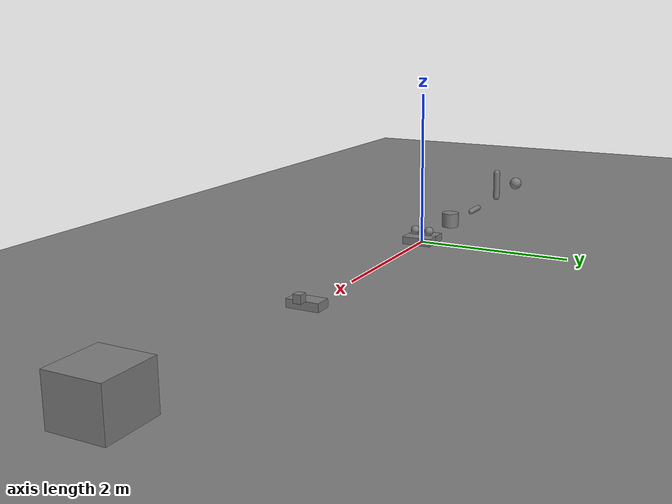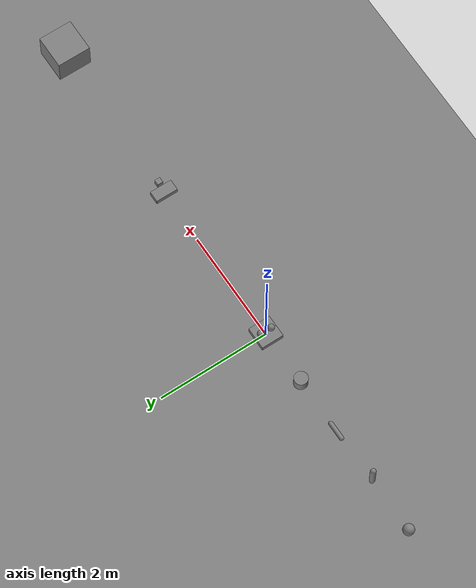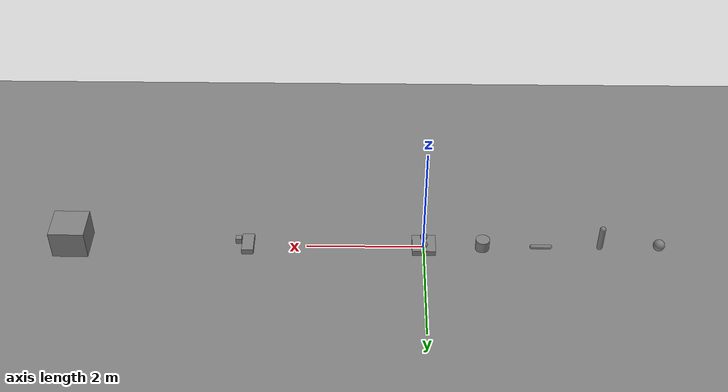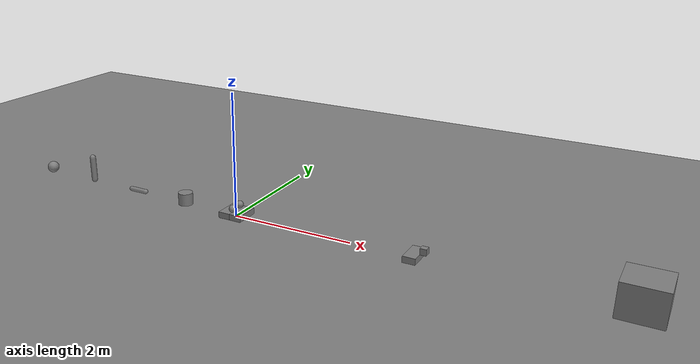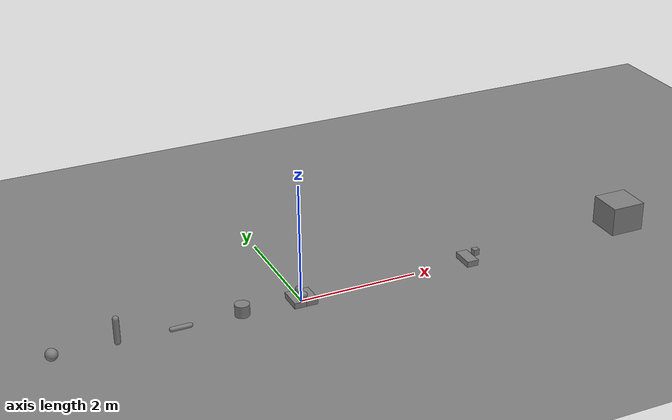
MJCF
<mujoco model="contact_zoo">
  <option timestep="0.004" impratio="5"/>

  <worldbody>
    <geom name="floor" type="plane" size="20 20 .1" contype="1" conaffinity="255"
          condim="3" friction="1 .005 .0001" solmix="2" priority="0"/>
    <geom name="wbox" type="box" pos="6 0 .25" size=".3 .3 .25" contype="1" conaffinity="1"
          condim="3" friction="0.8 .01 .0002"/>

    <body name="ball_a" pos="-4 0 .1">
      <freejoint/>
      <geom name="sa" type="sphere" size=".1" mass="1" contype="5" conaffinity="5"
            condim="6" friction=".6 .02 .001" solmix="0"/>
    </body>

    <body name="cap_a" pos="-3 0 .25">
      <freejoint/>
      <geom name="ca" type="capsule" size=".05 .2" mass="1" contype="1" conaffinity="1"
            condim="3" friction=".7 .01 .0005" solref=".03 1.2" solimp=".85 .95 .002 .4 2"/>
    </body>

    <body name="cap_b" pos="-2 0 .04">
      <freejoint/>
      <geom name="cb" type="capsule" size=".04 .15" euler="0 90 0" mass="1" contype="1" conaffinity="1"
            condim="1" priority="1" friction=".3 .01 .0005" solref=".01 .8" solimp=".8 .9 .01 .5 3"/>
    </body>

    <body name="cyl" pos="-1 0 .1">
      <freejoint/>
      <geom name="cy" type="cylinder" size=".12 .1" mass="1" contype="4" conaffinity="4"
            condim="3" friction=".4 .01 .0005" solmix="2" margin=".01" gap=".02"/>
    </body>

    <body name="box_a" pos="0 0 .05">
      <freejoint/>
      <geom name="ba1" type="box" pos="-.1 0 0" size=".1 .2 .05" mass=".5" contype="1" conaffinity="1"
            condim="3" solmix=".5"/>
      <geom name="ba2" type="box" pos=".1 0 0" size=".1 .2 .05" mass=".5" contype="1" conaffinity="1"
            condim="3" solmix=".5"/>
    </body>

    <body name="ball_b" pos="0 0 .158">
      <freejoint/>
      <geom name="sb1" type="sphere" pos="0 -.1 0" size=".06" mass=".5" contype="1" conaffinity="1"
            condim="4" friction=".5 .015 .0008" solmix="3"/>
      <geom name="sb2" type="sphere" pos="0 .1 0" size=".06" mass=".5" contype="1" conaffinity="1"
            condim="4" friction=".5 .015 .0008" solmix="3"/>
    </body>

    <body name="box_b" pos="3 0 .05">
      <freejoint/>
      <geom name="bb" type="box" size=".1 .2 .05" mass=".5" contype="1" conaffinity="1"
            condim="3" solref="-2000 -30" solimp=".85 .95 .002 .4 3"/>
      <body name="kid" pos=".1 0 .05">
        <joint name="kid_hinge" type="hinge" axis="0 1 0" range="-40 40"/>
        <geom name="kb" type="box" pos=".05 0 .05" size=".05 .05 .05" mass=".2" contype="1" conaffinity="1"
              condim="3"/>
      </body>
    </body>
  </worldbody>

  <contact>
    <exclude name="no_cap_b_box_b" body1="cap_b" body2="box_b"/>
  </contact>
</mujoco>
